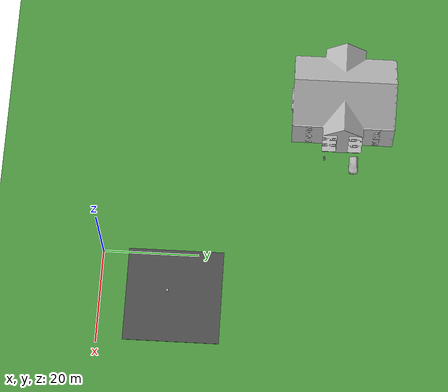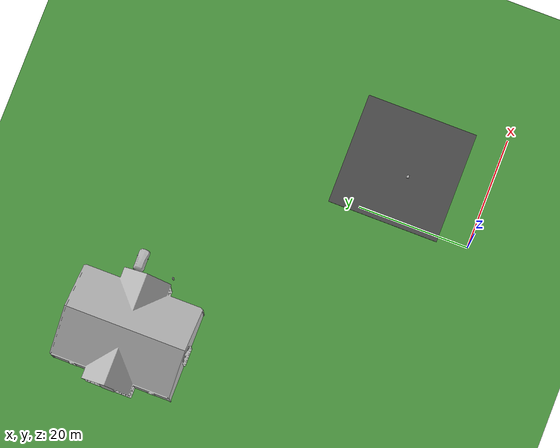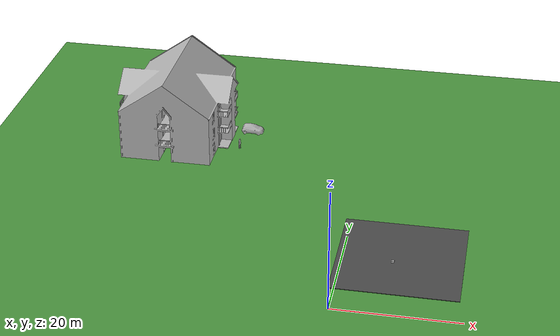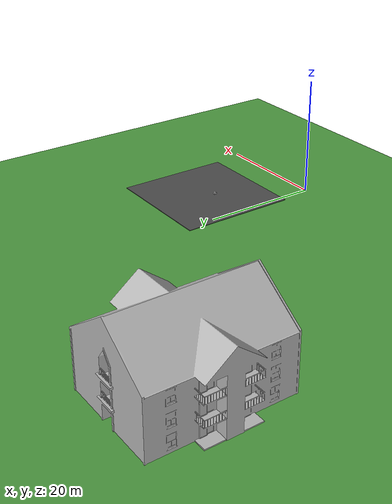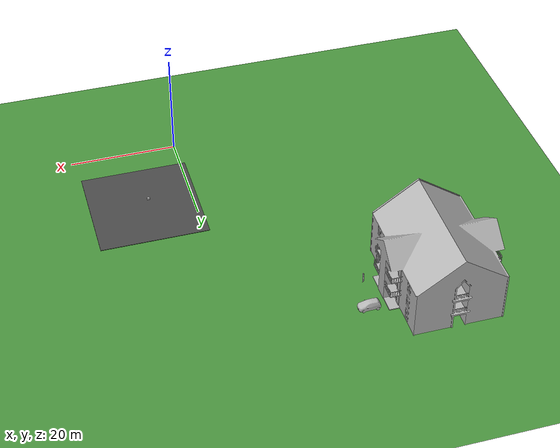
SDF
<sdf version="1.6">
 <world name="default">
  <physics name="default_physics" default="0" type="ode">
   <ode>
    <solver>
     <type>quick</type>
     <iters>100</iters>
     <sor>1</sor>
     <use_dynamic_moi_rescaling>0</use_dynamic_moi_rescaling>
    </solver>
    <constraints>
     <cfm>0</cfm>
     <erp>0.9</erp>
     <contact_max_correcting_vel>0.1</contact_max_correcting_vel>
     <contact_surface_layer>0</contact_surface_layer>
    </constraints>
   </ode>
   <real_time_update_rate>-1</real_time_update_rate>
   <max_step_size>0.001</max_step_size>
   <real_time_factor>1</real_time_factor>
  </physics>
  <scene>
   <sky><clouds><speed>12</speed></clouds></sky>
   <ambient>0.4 0.4 0.4 1</ambient>
   <background>0.25 0.25 0.25 1</background>
   <shadows>1</shadows>
  </scene>
  <light name="sun" type="directional">
   <pose>0 0 10 0 -0 0</pose>
   <diffuse>0.8 0.8 0.8 1</diffuse>
   <specular>0.2 0.2 0.2 1</specular>
   <attenuation>
    <range>1000</range>
    <constant>0.9</constant>
    <linear>0.01</linear>
    <quadratic>0.001</quadratic>
   </attenuation>
   <direction>-0.5 0.1 -0.9</direction>
  </light>
  <model name="ground_plane">
   <static>1</static>
   <link name="link">
    <collision name="collision">
     <geometry><plane><normal>0 0 1</normal><size>5000 5000</size></plane></geometry>
     <surface><friction><ode><mu>1</mu><mu2>1</mu2></ode></friction></surface>
    </collision>
    <visual name="grass">
     <pose>0 0 -0.1 0 -0 0</pose>
     <cast_shadows>0</cast_shadows>
     <geometry><plane><normal>0 0 1</normal><size>5000 5000</size></plane></geometry>
     <material>
      <script><uri>file://media/materials/scripts/gazebo.material</uri><name>Gazebo/Grass</name></script>
     </material>
    </visual>
   </link>
  </model>
  <gravity>0 0 -9.8</gravity>
  <magnetic_field>6e-06 2.3e-05 -4.2e-05</magnetic_field>
  <atmosphere type="adiabatic"/>
  <spherical_coordinates>
   <surface_model>EARTH_WGS84</surface_model>
   <latitude_deg>0</latitude_deg>
   <longitude_deg>0</longitude_deg>
   <elevation>0</elevation>
   <heading_deg>0</heading_deg>
  </spherical_coordinates>
  <model name="cardboard_box">
   <pose>8 14 0.199 0 -0 0</pose>
   <link name="link">
    <inertial>
     <mass>2</mass>
     <inertia>
      <ixx>0.0416667</ixx>
      <ixy>0</ixy>
      <ixz>0</ixz>
      <iyy>0.0566667</iyy>
      <iyz>0</iyz>
      <izz>0.0683333</izz>
     </inertia>
    </inertial>
    <collision name="collision">
     <geometry><box><size>0.5 0.4 0.3</size></box></geometry>
     <surface>
      <friction><ode><mu>1</mu><mu2>1</mu2></ode></friction>
      <contact><ode><kp>1e+07</kp><kd>1</kd><min_depth>0.001</min_depth><max_vel>0.1</max_vel></ode></contact>
     </surface>
    </collision>
    <visual name="visual">
     <pose>0 0 -0.15 0 -0 0</pose>
     <geometry>
      <mesh><uri>model://cardboard_box/meshes/cardboard_box.dae</uri><scale>1.25932 1.00745 0.755591</scale></mesh>
     </geometry>
    </visual>
   </link>
  </model>
  <model name="asphalt_plane">
   <static>1</static>
   <link name="link">
    <collision name="collision"><geometry><box><size>20 20 0.1</size></box></geometry></collision>
    <visual name="visual">
     <cast_shadows>0</cast_shadows>
     <geometry><box><size>20 20 0.1</size></box></geometry>
     <material>
      <script>
       <uri>model://asphalt_plane/materials/scripts</uri>
       <uri>model://asphalt_plane/materials/textures</uri>
       <name>vrc/asphalt</name>
      </script>
     </material>
    </visual>
   </link>
   <pose>9.08554 15.3704 0 0 -0 0</pose>
  </model>
  <model name="apartment">
   <static>1</static>
   <link name="link">
    <collision name="collision">
     <geometry><mesh><uri>model://apartment/meshes/apartment.dae</uri></mesh></geometry>
    </collision>
    <visual name="visual">
     <geometry><mesh><uri>model://apartment/meshes/apartment.dae</uri></mesh></geometry>
    </visual>
   </link>
   <pose>-35.1063 49.187 0 0 -0 0</pose>
  </model>
  <model name="hatchback">
   <static>1</static>
   <link name="link">
    <collision name="collision">
     <pose>0 0 0 0 -0 1.5708</pose>
     <geometry>
      <mesh><scale>0.0254 0.0254 0.0254</scale><uri>model://hatchback/meshes/hatchback.obj</uri></mesh>
     </geometry>
    </collision>
    <visual name="visual">
     <pose>0 0 0 0 -0 1.5708</pose>
     <geometry>
      <mesh><scale>0.0254 0.0254 0.0254</scale><uri>model://hatchback/meshes/hatchback.obj</uri></mesh>
     </geometry>
    </visual>
   </link>
   <pose>-22.445 51.8567 0 0 -0 0</pose>
  </model>
  <model name="person_standing">
   <link name="link">
    <inertial>
     <pose>0 -0.1 0.95 0 -0 0</pose>
     <mass>80</mass>
     <inertia><ixx>24.88</ixx><ixy>0</ixy><ixz>0</ixz><iyy>25.73</iyy><iyz>0</iyz><izz>2.48</izz></inertia>
    </inertial>
    <collision name="bottom">
     <pose>0 -0.1 0.01 0 -0 0</pose>
     <geometry><box><size>0.5 0.35 0.02</size></box></geometry>
    </collision>
    <collision name="person">
     <pose>0 0 0.02 0.04 -0 0</pose>
     <geometry><mesh><uri>model://person_standing/meshes/standing.dae</uri></mesh></geometry>
    </collision>
    <visual name="visual">
     <pose>0 0 0.02 0.04 -0 0</pose>
     <geometry><mesh><uri>model://person_standing/meshes/standing.dae</uri></mesh></geometry>
    </visual>
   </link>
   <pose>-23.2743 45.6118 -0 -1e-06 -0 0.864408</pose>
  </model>
 </world>
</sdf>
